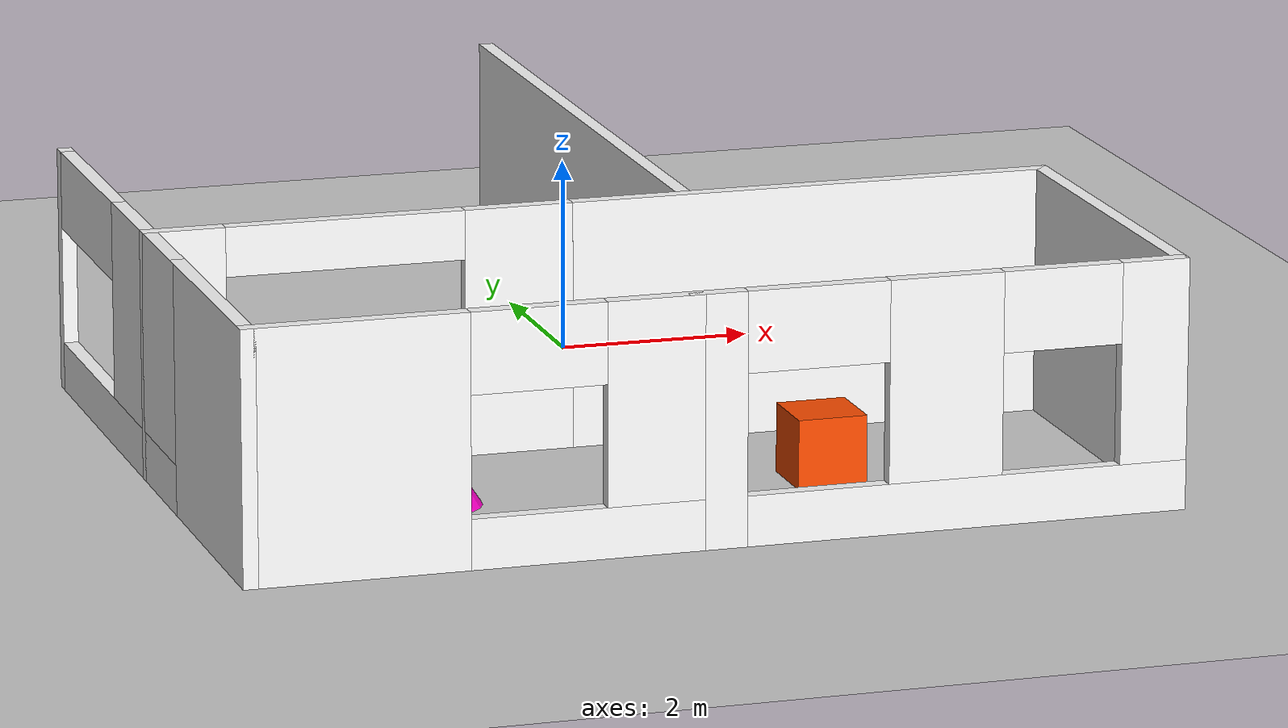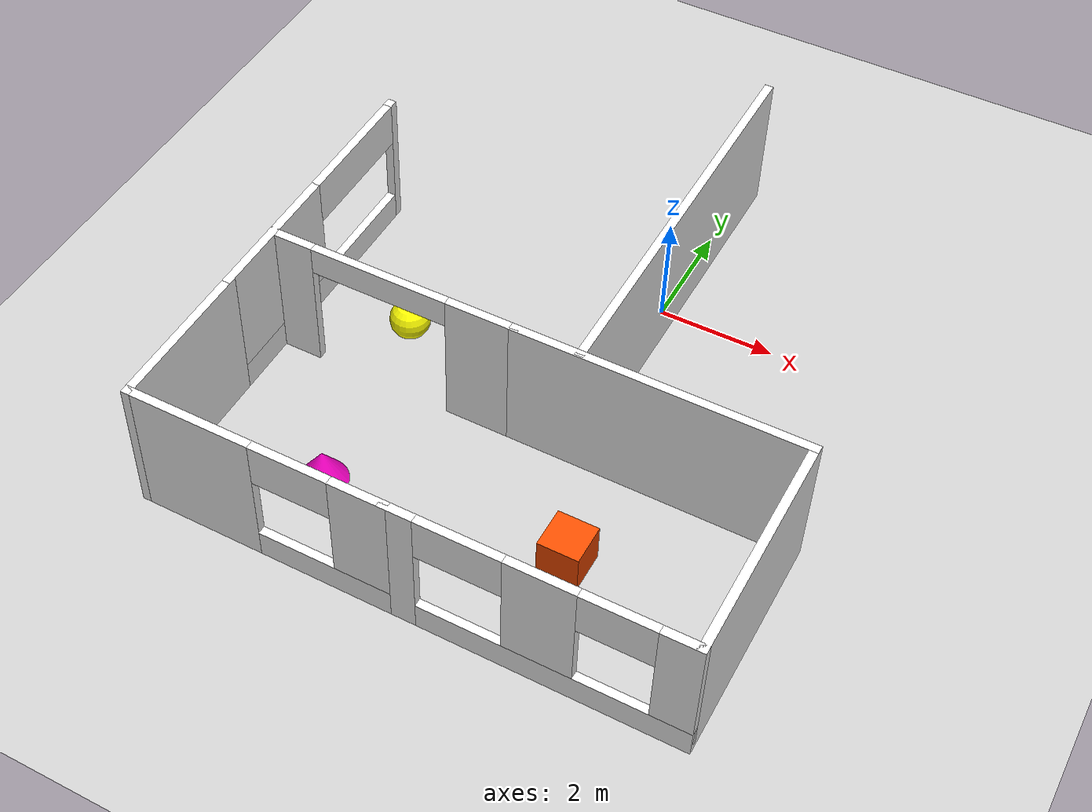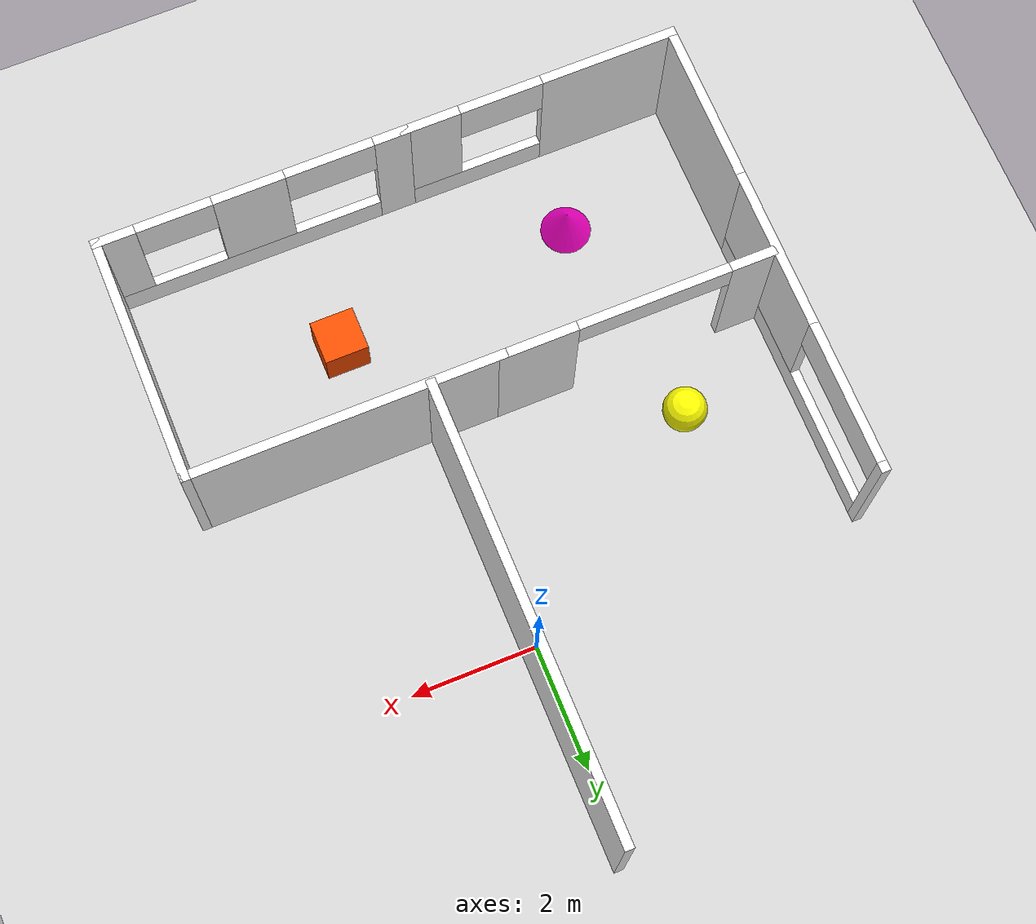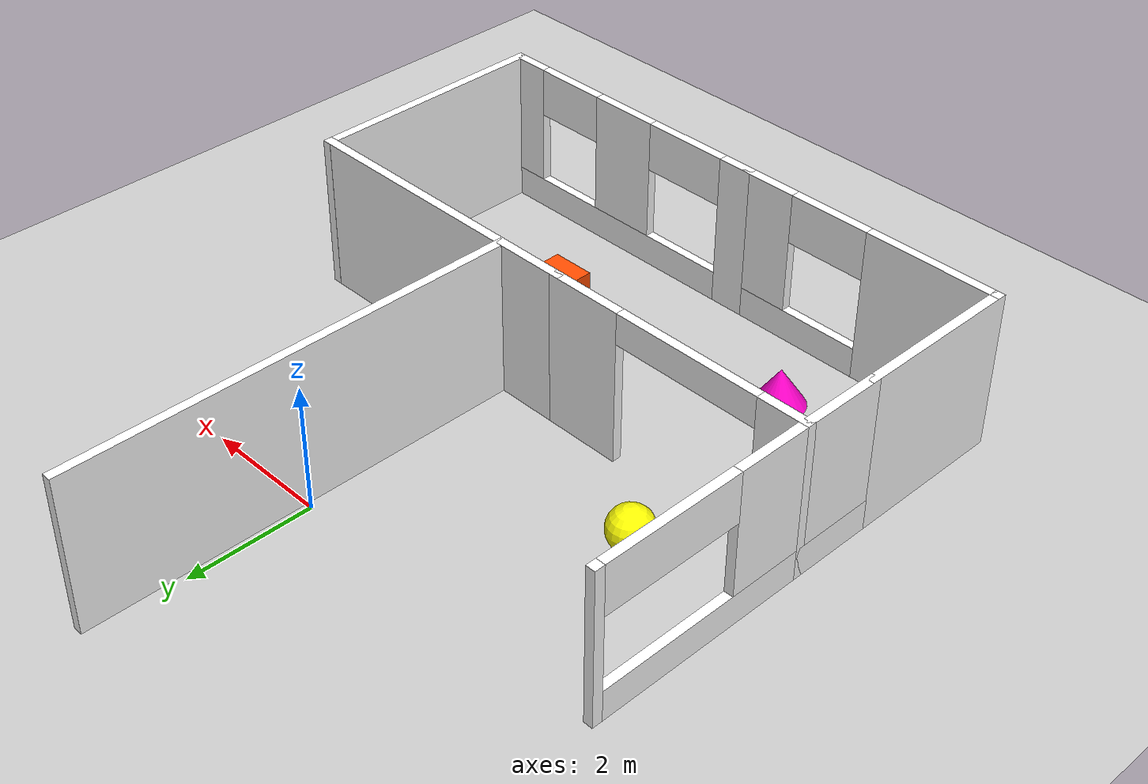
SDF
<sdf version="1.6">
 <world name="custom_world">
  <include><uri>https://fuel.gazebosim.org/1.0/OpenRobotics/models/Ground Plane</uri></include>
  <include><uri>https://fuel.gazebosim.org/1.0/OpenRobotics/models/Sun</uri></include>
  <model name="world_model">
   <pose>0 0 0 0 0 1.5708</pose>
   <link name="wall_3">
    <pose>-2.475 5.275 0 0 -0 3.14159</pose>
    <visual name="wall_3_visual_1">
     <pose>-2.41901 0 1.25 0 -0 0</pose>
     <geometry><box><size>0.161986 0.15 2.5</size></box></geometry>
     <material>
      <pbr><metal><albedo_map>textures/bricks.png</albedo_map></metal></pbr>
      <ambient>1 1 1 1</ambient>
      <diffuse>1 1 1 1</diffuse>
      <specular>0.2 0.2 0.2 1</specular>
      <emissive>0 0 0 1</emissive>
     </material>
    </visual>
    <visual name="wall_3_visual_2">
     <pose>0.080993 0 0.25 0 -0 0</pose>
     <geometry><box><size>4.83801 0.15 0.5</size></box></geometry>
     <material>
      <pbr><metal><albedo_map>textures/bricks.png</albedo_map></metal></pbr>
      <ambient>1 1 1 1</ambient>
      <diffuse>1 1 1 1</diffuse>
      <specular>0.2 0.2 0.2 1</specular>
      <emissive>0 0 0 1</emissive>
     </material>
    </visual>
    <visual name="wall_3_visual_3">
     <pose>1.2 0 1.5 0 -0 0</pose>
     <geometry><box><size>2.57501 0.15 2</size></box></geometry>
     <material>
      <pbr><metal><albedo_map>textures/bricks.png</albedo_map></metal></pbr>
      <ambient>1 1 1 1</ambient>
      <diffuse>1 1 1 1</diffuse>
      <specular>0.2 0.2 0.2 1</specular>
      <emissive>0 0 0 1</emissive>
     </material>
    </visual>
    <visual name="wall_3_visual_4">
     <pose>-1.20651 0 2.1 0 -0 0</pose>
     <geometry><box><size>2.263 0.15 0.8</size></box></geometry>
     <material>
      <pbr><metal><albedo_map>textures/bricks.png</albedo_map></metal></pbr>
      <ambient>1 1 1 1</ambient>
      <diffuse>1 1 1 1</diffuse>
      <specular>0.2 0.2 0.2 1</specular>
      <emissive>0 0 0 1</emissive>
     </material>
    </visual>
    <collision name="wall_3_collision_1">
     <pose>-2.41901 0 1.25 0 -0 0</pose>
     <geometry><box><size>0.161986 0.15 2.5</size></box></geometry>
     <surface>
      <friction>
       <ode><mu>1</mu><mu2>1</mu2><fdir1>0 0 0</fdir1><slip1>0</slip1><slip2>0</slip2></ode>
       <torsional>
        <coefficient>1</coefficient>
        <patch_radius>0</patch_radius>
        <surface_radius>0</surface_radius>
        <use_patch_radius>1</use_patch_radius>
        <ode><slip>0</slip></ode>
       </torsional>
      </friction>
      <bounce><restitution_coefficient>0</restitution_coefficient><threshold>1e+06</threshold></bounce>
      <contact>
       <collide_without_contact>0</collide_without_contact>
       <collide_without_contact_bitmask>1</collide_without_contact_bitmask>
       <collide_bitmask>1</collide_bitmask>
       <ode>
        <soft_cfm>0</soft_cfm>
        <soft_erp>0.2</soft_erp>
        <kp>1e+13</kp>
        <kd>1</kd>
        <max_vel>0.01</max_vel>
        <min_depth>0</min_depth>
       </ode>
       <bullet>
        <split_impulse>1</split_impulse>
        <split_impulse_penetration_threshold>-0.01</split_impulse_penetration_threshold>
        <soft_cfm>0</soft_cfm>
        <soft_erp>0.2</soft_erp>
        <kp>1e+13</kp>
        <kd>1</kd>
       </bullet>
      </contact>
     </surface>
    </collision>
    <collision name="wall_3_collision_2">
     <pose>0.080993 0 0.25 0 -0 0</pose>
     <geometry><box><size>4.83801 0.15 0.5</size></box></geometry>
     <surface>
      <friction>
       <ode><mu>1</mu><mu2>1</mu2><fdir1>0 0 0</fdir1><slip1>0</slip1><slip2>0</slip2></ode>
       <torsional>
        <coefficient>1</coefficient>
        <patch_radius>0</patch_radius>
        <surface_radius>0</surface_radius>
        <use_patch_radius>1</use_patch_radius>
        <ode><slip>0</slip></ode>
       </torsional>
      </friction>
      <bounce><restitution_coefficient>0</restitution_coefficient><threshold>1e+06</threshold></bounce>
      <contact>
       <collide_without_contact>0</collide_without_contact>
       <collide_without_contact_bitmask>1</collide_without_contact_bitmask>
       <collide_bitmask>1</collide_bitmask>
       <ode>
        <soft_cfm>0</soft_cfm>
        <soft_erp>0.2</soft_erp>
        <kp>1e+13</kp>
        <kd>1</kd>
        <max_vel>0.01</max_vel>
        <min_depth>0</min_depth>
       </ode>
       <bullet>
        <split_impulse>1</split_impulse>
        <split_impulse_penetration_threshold>-0.01</split_impulse_penetration_threshold>
        <soft_cfm>0</soft_cfm>
        <soft_erp>0.2</soft_erp>
        <kp>1e+13</kp>
        <kd>1</kd>
       </bullet>
      </contact>
     </surface>
    </collision>
    <collision name="wall_3_collision_3">
     <pose>1.2 0 1.5 0 -0 0</pose>
     <geometry><box><size>2.57501 0.15 2</size></box></geometry>
     <surface>
      <friction>
       <ode><mu>1</mu><mu2>1</mu2><fdir1>0 0 0</fdir1><slip1>0</slip1><slip2>0</slip2></ode>
       <torsional>
        <coefficient>1</coefficient>
        <patch_radius>0</patch_radius>
        <surface_radius>0</surface_radius>
        <use_patch_radius>1</use_patch_radius>
        <ode><slip>0</slip></ode>
       </torsional>
      </friction>
      <bounce><restitution_coefficient>0</restitution_coefficient><threshold>1e+06</threshold></bounce>
      <contact>
       <collide_without_contact>0</collide_without_contact>
       <collide_without_contact_bitmask>1</collide_without_contact_bitmask>
       <collide_bitmask>1</collide_bitmask>
       <ode>
        <soft_cfm>0</soft_cfm>
        <soft_erp>0.2</soft_erp>
        <kp>1e+13</kp>
        <kd>1</kd>
        <max_vel>0.01</max_vel>
        <min_depth>0</min_depth>
       </ode>
       <bullet>
        <split_impulse>1</split_impulse>
        <split_impulse_penetration_threshold>-0.01</split_impulse_penetration_threshold>
        <soft_cfm>0</soft_cfm>
        <soft_erp>0.2</soft_erp>
        <kp>1e+13</kp>
        <kd>1</kd>
       </bullet>
      </contact>
     </surface>
    </collision>
    <collision name="wall_3_collision_4">
     <pose>-1.20651 0 2.1 0 -0 0</pose>
     <geometry><box><size>2.263 0.15 0.8</size></box></geometry>
     <surface>
      <friction>
       <ode><mu>1</mu><mu2>1</mu2><fdir1>0 0 0</fdir1><slip1>0</slip1><slip2>0</slip2></ode>
       <torsional>
        <coefficient>1</coefficient>
        <patch_radius>0</patch_radius>
        <surface_radius>0</surface_radius>
        <use_patch_radius>1</use_patch_radius>
        <ode><slip>0</slip></ode>
       </torsional>
      </friction>
      <bounce><restitution_coefficient>0</restitution_coefficient><threshold>1e+06</threshold></bounce>
      <contact>
       <collide_without_contact>0</collide_without_contact>
       <collide_without_contact_bitmask>1</collide_without_contact_bitmask>
       <collide_bitmask>1</collide_bitmask>
       <ode>
        <soft_cfm>0</soft_cfm>
        <soft_erp>0.2</soft_erp>
        <kp>1e+13</kp>
        <kd>1</kd>
        <max_vel>0.01</max_vel>
        <min_depth>0</min_depth>
       </ode>
       <bullet>
        <split_impulse>1</split_impulse>
        <split_impulse_penetration_threshold>-0.01</split_impulse_penetration_threshold>
        <soft_cfm>0</soft_cfm>
        <soft_erp>0.2</soft_erp>
        <kp>1e+13</kp>
        <kd>1</kd>
       </bullet>
      </contact>
     </surface>
    </collision>
   </link>
   <link name="wall_4">
    <pose>-6.2 5.275 0 0 -0 3.14159</pose>
    <visual name="wall_4_visual">
     <pose>0 0 1.25 0 -0 0</pose>
     <geometry><box><size>2.75 0.15 2.5</size></box></geometry>
     <material>
      <pbr><metal><albedo_map>textures/bricks.png</albedo_map></metal></pbr>
      <ambient>1 1 1 1</ambient>
      <diffuse>1 1 1 1</diffuse>
      <specular>0.2 0.2 0.2 1</specular>
      <emissive>0 0 0 1</emissive>
     </material>
    </visual>
    <collision name="wall_4_collision">
     <pose>0 0 1.25 0 -0 0</pose>
     <geometry><box><size>2.75 0.15 2.5</size></box></geometry>
     <surface>
      <friction>
       <ode><mu>1</mu><mu2>1</mu2><fdir1>0 0 0</fdir1><slip1>0</slip1><slip2>0</slip2></ode>
       <torsional>
        <coefficient>1</coefficient>
        <patch_radius>0</patch_radius>
        <surface_radius>0</surface_radius>
        <use_patch_radius>1</use_patch_radius>
        <ode><slip>0</slip></ode>
       </torsional>
      </friction>
      <bounce><restitution_coefficient>0</restitution_coefficient><threshold>1e+06</threshold></bounce>
      <contact>
       <collide_without_contact>0</collide_without_contact>
       <collide_without_contact_bitmask>1</collide_without_contact_bitmask>
       <collide_bitmask>1</collide_bitmask>
       <ode>
        <soft_cfm>0</soft_cfm>
        <soft_erp>0.2</soft_erp>
        <kp>1e+13</kp>
        <kd>1</kd>
        <max_vel>0.01</max_vel>
        <min_depth>0</min_depth>
       </ode>
       <bullet>
        <split_impulse>1</split_impulse>
        <split_impulse_penetration_threshold>-0.01</split_impulse_penetration_threshold>
        <soft_cfm>0</soft_cfm>
        <soft_erp>0.2</soft_erp>
        <kp>1e+13</kp>
        <kd>1</kd>
       </bullet>
      </contact>
     </surface>
    </collision>
   </link>
   <link name="wall_5">
    <pose>-7.5 3.1 0 0 0 -1.5708</pose>
    <visual name="wall_5_visual_1">
     <pose>-1.14694 0 1.25 0 -0 0</pose>
     <geometry><box><size>2.20612 0.15 2.5</size></box></geometry>
     <material>
      <pbr><metal><albedo_map>textures/bricks.png</albedo_map></metal></pbr>
      <ambient>1 1 1 1</ambient>
      <diffuse>1 1 1 1</diffuse>
      <specular>0.2 0.2 0.2 1</specular>
      <emissive>0 0 0 1</emissive>
     </material>
    </visual>
    <visual name="wall_5_visual_2">
     <pose>1.10306 0 0.25 0 -0 0</pose>
     <geometry><box><size>2.29388 0.15 0.5</size></box></geometry>
     <material>
      <pbr><metal><albedo_map>textures/bricks.png</albedo_map></metal></pbr>
      <ambient>1 1 1 1</ambient>
      <diffuse>1 1 1 1</diffuse>
      <specular>0.2 0.2 0.2 1</specular>
      <emissive>0 0 0 1</emissive>
     </material>
    </visual>
    <visual name="wall_5_visual_3">
     <pose>1.76906 0 1.5 0 -0 0</pose>
     <geometry><box><size>0.96188 0.15 2</size></box></geometry>
     <material>
      <pbr><metal><albedo_map>textures/bricks.png</albedo_map></metal></pbr>
      <ambient>1 1 1 1</ambient>
      <diffuse>1 1 1 1</diffuse>
      <specular>0.2 0.2 0.2 1</specular>
      <emissive>0 0 0 1</emissive>
     </material>
    </visual>
    <visual name="wall_5_visual_4">
     <pose>0.62212 0 2.1 0 -0 0</pose>
     <geometry><box><size>1.332 0.15 0.8</size></box></geometry>
     <material>
      <pbr><metal><albedo_map>textures/bricks.png</albedo_map></metal></pbr>
      <ambient>1 1 1 1</ambient>
      <diffuse>1 1 1 1</diffuse>
      <specular>0.2 0.2 0.2 1</specular>
      <emissive>0 0 0 1</emissive>
     </material>
    </visual>
    <collision name="wall_5_collision_1">
     <pose>-1.14694 0 1.25 0 -0 0</pose>
     <geometry><box><size>2.20612 0.15 2.5</size></box></geometry>
     <surface>
      <friction>
       <ode><mu>1</mu><mu2>1</mu2><fdir1>0 0 0</fdir1><slip1>0</slip1><slip2>0</slip2></ode>
       <torsional>
        <coefficient>1</coefficient>
        <patch_radius>0</patch_radius>
        <surface_radius>0</surface_radius>
        <use_patch_radius>1</use_patch_radius>
        <ode><slip>0</slip></ode>
       </torsional>
      </friction>
      <bounce><restitution_coefficient>0</restitution_coefficient><threshold>1e+06</threshold></bounce>
      <contact>
       <collide_without_contact>0</collide_without_contact>
       <collide_without_contact_bitmask>1</collide_without_contact_bitmask>
       <collide_bitmask>1</collide_bitmask>
       <ode>
        <soft_cfm>0</soft_cfm>
        <soft_erp>0.2</soft_erp>
        <kp>1e+13</kp>
        <kd>1</kd>
        <max_vel>0.01</max_vel>
        <min_depth>0</min_depth>
       </ode>
       <bullet>
        <split_impulse>1</split_impulse>
        <split_impulse_penetration_threshold>-0.01</split_impulse_penetration_threshold>
        <soft_cfm>0</soft_cfm>
        <soft_erp>0.2</soft_erp>
        <kp>1e+13</kp>
        <kd>1</kd>
       </bullet>
      </contact>
     </surface>
    </collision>
    <collision name="wall_5_collision_2">
     <pose>1.10306 0 0.25 0 -0 0</pose>
     <geometry><box><size>2.29388 0.15 0.5</size></box></geometry>
     <surface>
      <friction>
       <ode><mu>1</mu><mu2>1</mu2><fdir1>0 0 0</fdir1><slip1>0</slip1><slip2>0</slip2></ode>
       <torsional>
        <coefficient>1</coefficient>
        <patch_radius>0</patch_radius>
        <surface_radius>0</surface_radius>
        <use_patch_radius>1</use_patch_radius>
        <ode><slip>0</slip></ode>
       </torsional>
      </friction>
      <bounce><restitution_coefficient>0</restitution_coefficient><threshold>1e+06</threshold></bounce>
      <contact>
       <collide_without_contact>0</collide_without_contact>
       <collide_without_contact_bitmask>1</collide_without_contact_bitmask>
       <collide_bitmask>1</collide_bitmask>
       <ode>
        <soft_cfm>0</soft_cfm>
        <soft_erp>0.2</soft_erp>
        <kp>1e+13</kp>
        <kd>1</kd>
        <max_vel>0.01</max_vel>
        <min_depth>0</min_depth>
       </ode>
       <bullet>
        <split_impulse>1</split_impulse>
        <split_impulse_penetration_threshold>-0.01</split_impulse_penetration_threshold>
        <soft_cfm>0</soft_cfm>
        <soft_erp>0.2</soft_erp>
        <kp>1e+13</kp>
        <kd>1</kd>
       </bullet>
      </contact>
     </surface>
    </collision>
    <collision name="wall_5_collision_3">
     <pose>1.76906 0 1.5 0 -0 0</pose>
     <geometry><box><size>0.96188 0.15 2</size></box></geometry>
     <surface>
      <friction>
       <ode><mu>1</mu><mu2>1</mu2><fdir1>0 0 0</fdir1><slip1>0</slip1><slip2>0</slip2></ode>
       <torsional>
        <coefficient>1</coefficient>
        <patch_radius>0</patch_radius>
        <surface_radius>0</surface_radius>
        <use_patch_radius>1</use_patch_radius>
        <ode><slip>0</slip></ode>
       </torsional>
      </friction>
      <bounce><restitution_coefficient>0</restitution_coefficient><threshold>1e+06</threshold></bounce>
      <contact>
       <collide_without_contact>0</collide_without_contact>
       <collide_without_contact_bitmask>1</collide_without_contact_bitmask>
       <collide_bitmask>1</collide_bitmask>
       <ode>
        <soft_cfm>0</soft_cfm>
        <soft_erp>0.2</soft_erp>
        <kp>1e+13</kp>
        <kd>1</kd>
        <max_vel>0.01</max_vel>
        <min_depth>0</min_depth>
       </ode>
       <bullet>
        <split_impulse>1</split_impulse>
        <split_impulse_penetration_threshold>-0.01</split_impulse_penetration_threshold>
        <soft_cfm>0</soft_cfm>
        <soft_erp>0.2</soft_erp>
        <kp>1e+13</kp>
        <kd>1</kd>
       </bullet>
      </contact>
     </surface>
    </collision>
    <collision name="wall_5_collision_4">
     <pose>0.62212 0 2.1 0 -0 0</pose>
     <geometry><box><size>1.332 0.15 0.8</size></box></geometry>
     <surface>
      <friction>
       <ode><mu>1</mu><mu2>1</mu2><fdir1>0 0 0</fdir1><slip1>0</slip1><slip2>0</slip2></ode>
       <torsional>
        <coefficient>1</coefficient>
        <patch_radius>0</patch_radius>
        <surface_radius>0</surface_radius>
        <use_patch_radius>1</use_patch_radius>
        <ode><slip>0</slip></ode>
       </torsional>
      </friction>
      <bounce><restitution_coefficient>0</restitution_coefficient><threshold>1e+06</threshold></bounce>
      <contact>
       <collide_without_contact>0</collide_without_contact>
       <collide_without_contact_bitmask>1</collide_without_contact_bitmask>
       <collide_bitmask>1</collide_bitmask>
       <ode>
        <soft_cfm>0</soft_cfm>
        <soft_erp>0.2</soft_erp>
        <kp>1e+13</kp>
        <kd>1</kd>
        <max_vel>0.01</max_vel>
        <min_depth>0</min_depth>
       </ode>
       <bullet>
        <split_impulse>1</split_impulse>
        <split_impulse_penetration_threshold>-0.01</split_impulse_penetration_threshold>
        <soft_cfm>0</soft_cfm>
        <soft_erp>0.2</soft_erp>
        <kp>1e+13</kp>
        <kd>1</kd>
       </bullet>
      </contact>
     </surface>
    </collision>
   </link>
   <link name="wall_6">
    <pose>-7.5 -1.5 0 0 0 -1.5708</pose>
    <visual name="wall_6_visual_1">
     <pose>-2.21538 0 1.25 0 -0 0</pose>
     <geometry><box><size>0.569241 0.15 2.5</size></box></geometry>
     <material>
      <pbr><metal><albedo_map>textures/bricks.png</albedo_map></metal></pbr>
      <ambient>1 1 1 1</ambient>
      <diffuse>1 1 1 1</diffuse>
      <specular>0.2 0.2 0.2 1</specular>
      <emissive>0 0 0 1</emissive>
     </material>
    </visual>
    <visual name="wall_6_visual_2">
     <pose>0.28462 0 0.25 0 -0 0</pose>
     <geometry><box><size>4.43076 0.15 0.5</size></box></geometry>
     <material>
      <pbr><metal><albedo_map>textures/bricks.png</albedo_map></metal></pbr>
      <ambient>1 1 1 1</ambient>
      <diffuse>1 1 1 1</diffuse>
      <specular>0.2 0.2 0.2 1</specular>
      <emissive>0 0 0 1</emissive>
     </material>
    </visual>
    <visual name="wall_6_visual_3">
     <pose>0.0521 0 1.5 0 -0 0</pose>
     <geometry><box><size>1.14172 0.15 2</size></box></geometry>
     <material>
      <pbr><metal><albedo_map>textures/bricks.png</albedo_map></metal></pbr>
      <ambient>1 1 1 1</ambient>
      <diffuse>1 1 1 1</diffuse>
      <specular>0.2 0.2 0.2 1</specular>
      <emissive>0 0 0 1</emissive>
     </material>
    </visual>
    <visual name="wall_6_visual_4">
     <pose>2.16098 0 1.5 0 -0 0</pose>
     <geometry><box><size>0.678041 0.15 2</size></box></geometry>
     <material>
      <pbr><metal><albedo_map>textures/bricks.png</albedo_map></metal></pbr>
      <ambient>1 1 1 1</ambient>
      <diffuse>1 1 1 1</diffuse>
      <specular>0.2 0.2 0.2 1</specular>
      <emissive>0 0 0 1</emissive>
     </material>
    </visual>
    <visual name="wall_6_visual_5">
     <pose>-1.22476 0 2.1 0 -0 0</pose>
     <geometry><box><size>1.412 0.15 0.8</size></box></geometry>
     <material>
      <pbr><metal><albedo_map>textures/bricks.png</albedo_map></metal></pbr>
      <ambient>1 1 1 1</ambient>
      <diffuse>1 1 1 1</diffuse>
      <specular>0.2 0.2 0.2 1</specular>
      <emissive>0 0 0 1</emissive>
     </material>
    </visual>
    <visual name="wall_6_visual_6">
     <pose>1.22246 0 2.1 0 -0 0</pose>
     <geometry><box><size>1.199 0.15 0.8</size></box></geometry>
     <material>
      <pbr><metal><albedo_map>textures/bricks.png</albedo_map></metal></pbr>
      <ambient>1 1 1 1</ambient>
      <diffuse>1 1 1 1</diffuse>
      <specular>0.2 0.2 0.2 1</specular>
      <emissive>0 0 0 1</emissive>
     </material>
    </visual>
    <collision name="wall_6_collision_1">
     <pose>-2.21538 0 1.25 0 -0 0</pose>
     <geometry><box><size>0.569241 0.15 2.5</size></box></geometry>
     <surface>
      <friction>
       <ode><mu>1</mu><mu2>1</mu2><fdir1>0 0 0</fdir1><slip1>0</slip1><slip2>0</slip2></ode>
       <torsional>
        <coefficient>1</coefficient>
        <patch_radius>0</patch_radius>
        <surface_radius>0</surface_radius>
        <use_patch_radius>1</use_patch_radius>
        <ode><slip>0</slip></ode>
       </torsional>
      </friction>
      <bounce><restitution_coefficient>0</restitution_coefficient><threshold>1e+06</threshold></bounce>
      <contact>
       <collide_without_contact>0</collide_without_contact>
       <collide_without_contact_bitmask>1</collide_without_contact_bitmask>
       <collide_bitmask>1</collide_bitmask>
       <ode>
        <soft_cfm>0</soft_cfm>
        <soft_erp>0.2</soft_erp>
        <kp>1e+13</kp>
        <kd>1</kd>
        <max_vel>0.01</max_vel>
        <min_depth>0</min_depth>
       </ode>
       <bullet>
        <split_impulse>1</split_impulse>
        <split_impulse_penetration_threshold>-0.01</split_impulse_penetration_threshold>
        <soft_cfm>0</soft_cfm>
        <soft_erp>0.2</soft_erp>
        <kp>1e+13</kp>
        <kd>1</kd>
       </bullet>
      </contact>
     </surface>
    </collision>
    <collision name="wall_6_collision_2">
     <pose>0.28462 0 0.25 0 -0 0</pose>
     <geometry><box><size>4.43076 0.15 0.5</size></box></geometry>
     <surface>
      <friction>
       <ode><mu>1</mu><mu2>1</mu2><fdir1>0 0 0</fdir1><slip1>0</slip1><slip2>0</slip2></ode>
       <torsional>
        <coefficient>1</coefficient>
        <patch_radius>0</patch_radius>
        <surface_radius>0</surface_radius>
        <use_patch_radius>1</use_patch_radius>
        <ode><slip>0</slip></ode>
       </torsional>
      </friction>
      <bounce><restitution_coefficient>0</restitution_coefficient><threshold>1e+06</threshold></bounce>
      <contact>
       <collide_without_contact>0</collide_without_contact>
       <collide_without_contact_bitmask>1</collide_without_contact_bitmask>
       <collide_bitmask>1</collide_bitmask>
       <ode>
        <soft_cfm>0</soft_cfm>
        <soft_erp>0.2</soft_erp>
        <kp>1e+13</kp>
        <kd>1</kd>
        <max_vel>0.01</max_vel>
        <min_depth>0</min_depth>
       </ode>
       <bullet>
        <split_impulse>1</split_impulse>
        <split_impulse_penetration_threshold>-0.01</split_impulse_penetration_threshold>
        <soft_cfm>0</soft_cfm>
        <soft_erp>0.2</soft_erp>
        <kp>1e+13</kp>
        <kd>1</kd>
       </bullet>
      </contact>
     </surface>
    </collision>
    <collision name="wall_6_collision_3">
     <pose>0.0521 0 1.5 0 -0 0</pose>
     <geometry><box><size>1.14172 0.15 2</size></box></geometry>
     <surface>
      <friction>
       <ode><mu>1</mu><mu2>1</mu2><fdir1>0 0 0</fdir1><slip1>0</slip1><slip2>0</slip2></ode>
       <torsional>
        <coefficient>1</coefficient>
        <patch_radius>0</patch_radius>
        <surface_radius>0</surface_radius>
        <use_patch_radius>1</use_patch_radius>
        <ode><slip>0</slip></ode>
       </torsional>
      </friction>
      <bounce><restitution_coefficient>0</restitution_coefficient><threshold>1e+06</threshold></bounce>
      <contact>
       <collide_without_contact>0</collide_without_contact>
       <collide_without_contact_bitmask>1</collide_without_contact_bitmask>
       <collide_bitmask>1</collide_bitmask>
       <ode>
        <soft_cfm>0</soft_cfm>
        <soft_erp>0.2</soft_erp>
        <kp>1e+13</kp>
        <kd>1</kd>
        <max_vel>0.01</max_vel>
        <min_depth>0</min_depth>
       </ode>
       <bullet>
        <split_impulse>1</split_impulse>
        <split_impulse_penetration_threshold>-0.01</split_impulse_penetration_threshold>
        <soft_cfm>0</soft_cfm>
        <soft_erp>0.2</soft_erp>
        <kp>1e+13</kp>
        <kd>1</kd>
       </bullet>
      </contact>
     </surface>
    </collision>
    <collision name="wall_6_collision_4">
     <pose>2.16098 0 1.5 0 -0 0</pose>
     <geometry><box><size>0.678041 0.15 2</size></box></geometry>
     <surface>
      <friction>
       <ode><mu>1</mu><mu2>1</mu2><fdir1>0 0 0</fdir1><slip1>0</slip1><slip2>0</slip2></ode>
       <torsional>
        <coefficient>1</coefficient>
        <patch_radius>0</patch_radius>
        <surface_radius>0</surface_radius>
        <use_patch_radius>1</use_patch_radius>
        <ode><slip>0</slip></ode>
       </torsional>
      </friction>
      <bounce><restitution_coefficient>0</restitution_coefficient><threshold>1e+06</threshold></bounce>
      <contact>
       <collide_without_contact>0</collide_without_contact>
       <collide_without_contact_bitmask>1</collide_without_contact_bitmask>
       <collide_bitmask>1</collide_bitmask>
       <ode>
        <soft_cfm>0</soft_cfm>
        <soft_erp>0.2</soft_erp>
        <kp>1e+13</kp>
        <kd>1</kd>
        <max_vel>0.01</max_vel>
        <min_depth>0</min_depth>
       </ode>
       <bullet>
        <split_impulse>1</split_impulse>
        <split_impulse_penetration_threshold>-0.01</split_impulse_penetration_threshold>
        <soft_cfm>0</soft_cfm>
        <soft_erp>0.2</soft_erp>
        <kp>1e+13</kp>
        <kd>1</kd>
       </bullet>
      </contact>
     </surface>
    </collision>
    <collision name="wall_6_collision_5">
     <pose>-1.22476 0 2.1 0 -0 0</pose>
     <geometry><box><size>1.412 0.15 0.8</size></box></geometry>
     <surface>
      <friction>
       <ode><mu>1</mu><mu2>1</mu2><fdir1>0 0 0</fdir1><slip1>0</slip1><slip2>0</slip2></ode>
       <torsional>
        <coefficient>1</coefficient>
        <patch_radius>0</patch_radius>
        <surface_radius>0</surface_radius>
        <use_patch_radius>1</use_patch_radius>
        <ode><slip>0</slip></ode>
       </torsional>
      </friction>
      <bounce><restitution_coefficient>0</restitution_coefficient><threshold>1e+06</threshold></bounce>
      <contact>
       <collide_without_contact>0</collide_without_contact>
       <collide_without_contact_bitmask>1</collide_without_contact_bitmask>
       <collide_bitmask>1</collide_bitmask>
       <ode>
        <soft_cfm>0</soft_cfm>
        <soft_erp>0.2</soft_erp>
        <kp>1e+13</kp>
        <kd>1</kd>
        <max_vel>0.01</max_vel>
        <min_depth>0</min_depth>
       </ode>
       <bullet>
        <split_impulse>1</split_impulse>
        <split_impulse_penetration_threshold>-0.01</split_impulse_penetration_threshold>
        <soft_cfm>0</soft_cfm>
        <soft_erp>0.2</soft_erp>
        <kp>1e+13</kp>
        <kd>1</kd>
       </bullet>
      </contact>
     </surface>
    </collision>
    <collision name="wall_6_collision_6">
     <pose>1.22246 0 2.1 0 -0 0</pose>
     <geometry><box><size>1.199 0.15 0.8</size></box></geometry>
     <surface>
      <friction>
       <ode><mu>1</mu><mu2>1</mu2><fdir1>0 0 0</fdir1><slip1>0</slip1><slip2>0</slip2></ode>
       <torsional>
        <coefficient>1</coefficient>
        <patch_radius>0</patch_radius>
        <surface_radius>0</surface_radius>
        <use_patch_radius>1</use_patch_radius>
        <ode><slip>0</slip></ode>
       </torsional>
      </friction>
      <bounce><restitution_coefficient>0</restitution_coefficient><threshold>1e+06</threshold></bounce>
      <contact>
       <collide_without_contact>0</collide_without_contact>
       <collide_without_contact_bitmask>1</collide_without_contact_bitmask>
       <collide_bitmask>1</collide_bitmask>
       <ode>
        <soft_cfm>0</soft_cfm>
        <soft_erp>0.2</soft_erp>
        <kp>1e+13</kp>
        <kd>1</kd>
        <max_vel>0.01</max_vel>
        <min_depth>0</min_depth>
       </ode>
       <bullet>
        <split_impulse>1</split_impulse>
        <split_impulse_penetration_threshold>-0.01</split_impulse_penetration_threshold>
        <soft_cfm>0</soft_cfm>
        <soft_erp>0.2</soft_erp>
        <kp>1e+13</kp>
        <kd>1</kd>
       </bullet>
      </contact>
     </surface>
    </collision>
   </link>
   <link name="wall_7">
    <pose>-5.575 -3.925 0 0 -0 0</pose>
    <visual name="wall_7_visual">
     <pose>0 0 1.25 0 -0 0</pose>
     <geometry><box><size>4 0.15 2.5</size></box></geometry>
     <material>
      <pbr><metal><albedo_map>textures/bricks.png</albedo_map></metal></pbr>
      <ambient>1 1 1 1</ambient>
      <diffuse>1 1 1 1</diffuse>
      <specular>0.2 0.2 0.2 1</specular>
      <emissive>0 0 0 1</emissive>
     </material>
    </visual>
    <collision name="wall_7_collision">
     <pose>0 0 1.25 0 -0 0</pose>
     <geometry><box><size>4 0.15 2.5</size></box></geometry>
     <surface>
      <friction>
       <ode><mu>1</mu><mu2>1</mu2><fdir1>0 0 0</fdir1><slip1>0</slip1><slip2>0</slip2></ode>
       <torsional>
        <coefficient>1</coefficient>
        <patch_radius>0</patch_radius>
        <surface_radius>0</surface_radius>
        <use_patch_radius>1</use_patch_radius>
        <ode><slip>0</slip></ode>
       </torsional>
      </friction>
      <bounce><restitution_coefficient>0</restitution_coefficient><threshold>1e+06</threshold></bounce>
      <contact>
       <collide_without_contact>0</collide_without_contact>
       <collide_without_contact_bitmask>1</collide_without_contact_bitmask>
       <collide_bitmask>1</collide_bitmask>
       <ode>
        <soft_cfm>0</soft_cfm>
        <soft_erp>0.2</soft_erp>
        <kp>1e+13</kp>
        <kd>1</kd>
        <max_vel>0.01</max_vel>
        <min_depth>0</min_depth>
       </ode>
       <bullet>
        <split_impulse>1</split_impulse>
        <split_impulse_penetration_threshold>-0.01</split_impulse_penetration_threshold>
        <soft_cfm>0</soft_cfm>
        <soft_erp>0.2</soft_erp>
        <kp>1e+13</kp>
        <kd>1</kd>
       </bullet>
      </contact>
     </surface>
    </collision>
   </link>
   <link name="wall_8">
    <pose>-3.65151 -1.49625 0 0 -0 1.5708</pose>
    <visual name="wall_8_visual">
     <pose>0 0 1.25 0 -0 0</pose>
     <geometry><box><size>5 0.15 2.5</size></box></geometry>
     <material>
      <pbr><metal><albedo_map>textures/bricks.png</albedo_map></metal></pbr>
      <ambient>1 1 1 1</ambient>
      <diffuse>1 1 1 1</diffuse>
      <specular>0.2 0.2 0.2 1</specular>
      <emissive>0 0 0 1</emissive>
     </material>
    </visual>
    <collision name="wall_8_collision">
     <pose>0 0 1.25 0 -0 0</pose>
     <geometry><box><size>5 0.15 2.5</size></box></geometry>
     <surface>
      <friction>
       <ode><mu>1</mu><mu2>1</mu2><fdir1>0 0 0</fdir1><slip1>0</slip1><slip2>0</slip2></ode>
       <torsional>
        <coefficient>1</coefficient>
        <patch_radius>0</patch_radius>
        <surface_radius>0</surface_radius>
        <use_patch_radius>1</use_patch_radius>
        <ode><slip>0</slip></ode>
       </torsional>
      </friction>
      <bounce><restitution_coefficient>0</restitution_coefficient><threshold>1e+06</threshold></bounce>
      <contact>
       <collide_without_contact>0</collide_without_contact>
       <collide_without_contact_bitmask>1</collide_without_contact_bitmask>
       <collide_bitmask>1</collide_bitmask>
       <ode>
        <soft_cfm>0</soft_cfm>
        <soft_erp>0.2</soft_erp>
        <kp>1e+13</kp>
        <kd>1</kd>
        <max_vel>0.01</max_vel>
        <min_depth>0</min_depth>
       </ode>
       <bullet>
        <split_impulse>1</split_impulse>
        <split_impulse_penetration_threshold>-0.01</split_impulse_penetration_threshold>
        <soft_cfm>0</soft_cfm>
        <soft_erp>0.2</soft_erp>
        <kp>1e+13</kp>
        <kd>1</kd>
       </bullet>
      </contact>
     </surface>
    </collision>
   </link>
   <link name="wall_10">
    <pose>-0.1 -0.17494 0 0 0 -4.6e-05</pose>
    <visual name="wall_10_visual">
     <pose>0 0 1.25 0 -0 0</pose>
     <geometry><box><size>7.2 0.15 2.5</size></box></geometry>
     <material>
      <pbr><metal><albedo_map>textures/bricks.png</albedo_map></metal></pbr>
      <ambient>1 1 1 1</ambient>
      <diffuse>1 1 1 1</diffuse>
      <specular>0.2 0.2 0.2 1</specular>
      <emissive>0 0 0 1</emissive>
     </material>
    </visual>
    <collision name="wall_10_collision">
     <pose>0 0 1.25 0 -0 0</pose>
     <geometry><box><size>7.2 0.15 2.5</size></box></geometry>
     <surface>
      <friction>
       <ode><mu>1</mu><mu2>1</mu2><fdir1>0 0 0</fdir1><slip1>0</slip1><slip2>0</slip2></ode>
       <torsional>
        <coefficient>1</coefficient>
        <patch_radius>0</patch_radius>
        <surface_radius>0</surface_radius>
        <use_patch_radius>1</use_patch_radius>
        <ode><slip>0</slip></ode>
       </torsional>
      </friction>
      <bounce><restitution_coefficient>0</restitution_coefficient><threshold>1e+06</threshold></bounce>
      <contact>
       <collide_without_contact>0</collide_without_contact>
       <collide_without_contact_bitmask>1</collide_without_contact_bitmask>
       <collide_bitmask>1</collide_bitmask>
       <ode>
        <soft_cfm>0</soft_cfm>
        <soft_erp>0.2</soft_erp>
        <kp>1e+13</kp>
        <kd>1</kd>
        <max_vel>0.01</max_vel>
        <min_depth>0</min_depth>
       </ode>
       <bullet>
        <split_impulse>1</split_impulse>
        <split_impulse_penetration_threshold>-0.01</split_impulse_penetration_threshold>
        <soft_cfm>0</soft_cfm>
        <soft_erp>0.2</soft_erp>
        <kp>1e+13</kp>
        <kd>1</kd>
       </bullet>
      </contact>
     </surface>
    </collision>
   </link>
   <link name="wall_16">
    <pose>-3.65151 3.1 0 0 -0 1.5708</pose>
    <visual name="wall_16_visual_1">
     <pose>-1.62116 0 1.25 0 -0 0</pose>
     <geometry><box><size>1.25768 0.15 2.5</size></box></geometry>
     <material>
      <pbr><metal><albedo_map>textures/bricks.png</albedo_map></metal></pbr>
      <ambient>1 1 1 1</ambient>
      <diffuse>1 1 1 1</diffuse>
      <specular>0.2 0.2 0.2 1</specular>
      <emissive>0 0 0 1</emissive>
     </material>
    </visual>
    <visual name="wall_16_visual_2">
     <pose>1.83695 0 1.25 0 -0 0</pose>
     <geometry><box><size>0.826108 0.15 2.5</size></box></geometry>
     <material>
      <pbr><metal><albedo_map>textures/bricks.png</albedo_map></metal></pbr>
      <ambient>1 1 1 1</ambient>
      <diffuse>1 1 1 1</diffuse>
      <specular>0.2 0.2 0.2 1</specular>
      <emissive>0 0 0 1</emissive>
     </material>
    </visual>
    <visual name="wall_16_visual_3">
     <pose>0.215786 0 2.25 0 -0 0</pose>
     <geometry><box><size>2.41621 0.15 0.5</size></box></geometry>
     <material>
      <pbr><metal><albedo_map>textures/bricks.png</albedo_map></metal></pbr>
      <ambient>1 1 1 1</ambient>
      <diffuse>1 1 1 1</diffuse>
      <specular>0.2 0.2 0.2 1</specular>
      <emissive>0 0 0 1</emissive>
     </material>
    </visual>
    <collision name="wall_16_collision_1">
     <pose>-1.62116 0 1.25 0 -0 0</pose>
     <geometry><box><size>1.25768 0.15 2.5</size></box></geometry>
     <surface>
      <friction>
       <ode><mu>1</mu><mu2>1</mu2><fdir1>0 0 0</fdir1><slip1>0</slip1><slip2>0</slip2></ode>
       <torsional>
        <coefficient>1</coefficient>
        <patch_radius>0</patch_radius>
        <surface_radius>0</surface_radius>
        <use_patch_radius>1</use_patch_radius>
        <ode><slip>0</slip></ode>
       </torsional>
      </friction>
      <bounce><restitution_coefficient>0</restitution_coefficient><threshold>1e+06</threshold></bounce>
      <contact>
       <collide_without_contact>0</collide_without_contact>
       <collide_without_contact_bitmask>1</collide_without_contact_bitmask>
       <collide_bitmask>1</collide_bitmask>
       <ode>
        <soft_cfm>0</soft_cfm>
        <soft_erp>0.2</soft_erp>
        <kp>1e+13</kp>
        <kd>1</kd>
        <max_vel>0.01</max_vel>
        <min_depth>0</min_depth>
       </ode>
       <bullet>
        <split_impulse>1</split_impulse>
        <split_impulse_penetration_threshold>-0.01</split_impulse_penetration_threshold>
        <soft_cfm>0</soft_cfm>
        <soft_erp>0.2</soft_erp>
        <kp>1e+13</kp>
        <kd>1</kd>
       </bullet>
      </contact>
     </surface>
    </collision>
    <collision name="wall_16_collision_2">
     <pose>1.83695 0 1.25 0 -0 0</pose>
     <geometry><box><size>0.826108 0.15 2.5</size></box></geometry>
     <surface>
      <friction>
       <ode><mu>1</mu><mu2>1</mu2><fdir1>0 0 0</fdir1><slip1>0</slip1><slip2>0</slip2></ode>
       <torsional>
        <coefficient>1</coefficient>
        <patch_radius>0</patch_radius>
        <surface_radius>0</surface_radius>
        <use_patch_radius>1</use_patch_radius>
        <ode><slip>0</slip></ode>
       </torsional>
      </friction>
      <bounce><restitution_coefficient>0</restitution_coefficient><threshold>1e+06</threshold></bounce>
      <contact>
       <collide_without_contact>0</collide_without_contact>
       <collide_without_contact_bitmask>1</collide_without_contact_bitmask>
       <collide_bitmask>1</collide_bitmask>
       <ode>
        <soft_cfm>0</soft_cfm>
        <soft_erp>0.2</soft_erp>
        <kp>1e+13</kp>
        <kd>1</kd>
        <max_vel>0.01</max_vel>
        <min_depth>0</min_depth>
       </ode>
       <bullet>
        <split_impulse>1</split_impulse>
        <split_impulse_penetration_threshold>-0.01</split_impulse_penetration_threshold>
        <soft_cfm>0</soft_cfm>
        <soft_erp>0.2</soft_erp>
        <kp>1e+13</kp>
        <kd>1</kd>
       </bullet>
      </contact>
     </surface>
    </collision>
    <collision name="wall_16_collision_3">
     <pose>0.215786 0 2.25 0 -0 0</pose>
     <geometry><box><size>2.41621 0.15 0.5</size></box></geometry>
     <surface>
      <friction>
       <ode><mu>1</mu><mu2>1</mu2><fdir1>0 0 0</fdir1><slip1>0</slip1><slip2>0</slip2></ode>
       <torsional>
        <coefficient>1</coefficient>
        <patch_radius>0</patch_radius>
        <surface_radius>0</surface_radius>
        <use_patch_radius>1</use_patch_radius>
        <ode><slip>0</slip></ode>
       </torsional>
      </friction>
      <bounce><restitution_coefficient>0</restitution_coefficient><threshold>1e+06</threshold></bounce>
      <contact>
       <collide_without_contact>0</collide_without_contact>
       <collide_without_contact_bitmask>1</collide_without_contact_bitmask>
       <collide_bitmask>1</collide_bitmask>
       <ode>
        <soft_cfm>0</soft_cfm>
        <soft_erp>0.2</soft_erp>
        <kp>1e+13</kp>
        <kd>1</kd>
        <max_vel>0.01</max_vel>
        <min_depth>0</min_depth>
       </ode>
       <bullet>
        <split_impulse>1</split_impulse>
        <split_impulse_penetration_threshold>-0.01</split_impulse_penetration_threshold>
        <soft_cfm>0</soft_cfm>
        <soft_erp>0.2</soft_erp>
        <kp>1e+13</kp>
        <kd>1</kd>
       </bullet>
      </contact>
     </surface>
    </collision>
   </link>
   <model name="box2">
    <pose>-5.5 -1 0.35 0 0 0</pose>
    <link name="box_link">
     <inertial>
      <inertia><ixx>0.16666</ixx><ixy>0</ixy><ixz>0</ixz><iyy>0.16666</iyy><iyz>0</iyz><izz>0.16666</izz></inertia>
      <mass>1</mass>
     </inertial>
     <collision name="box_collision"><geometry><box><size>0.7 0.7 0.7</size></box></geometry></collision>
     <visual name="box_visual">
      <geometry><box><size>0.7 0.7 0.7</size></box></geometry>
      <material>
       <ambient>0.4 0.1 0 1</ambient>
       <diffuse>1 0.3 0 1</diffuse>
       <specular>1 0.5 0.2 1</specular>
      </material>
     </visual>
    </link>
    <static>false</static>
   </model>
   <model name="sphere1">
    <pose>-2.5 3.5 0.35 0 0 0</pose>
    <link name="sphere_link">
     <inertial>
      <inertia>
       <ixx>0.10000000000000001</ixx>
       <ixy>0</ixy>
       <ixz>0</ixz>
       <iyy>0.10000000000000001</iyy>
       <iyz>0</iyz>
       <izz>0.10000000000000001</izz>
      </inertia>
      <mass>1</mass>
     </inertial>
     <collision name="sphere_collision"><geometry><sphere><radius>0.35</radius></sphere></geometry></collision>
     <visual name="sphere_visual">
      <geometry><sphere><radius>0.35</radius></sphere></geometry>
      <material><ambient>0.5 0.5 0 1</ambient><diffuse>1 1 0 1</diffuse><specular>1 1 0.5 1</specular></material>
     </visual>
    </link>
    <static>false</static>
   </model>
   <model name="cone3">
    <pose>-6 3 0.5 0 0 0</pose>
    <link name="cone_link">
     <inertial>
      <inertia>
       <ixx>0.14580000000000001</ixx>
       <ixy>0</ixy>
       <ixz>0</ixz>
       <iyy>0.14580000000000001</iyy>
       <iyz>0</iyz>
       <izz>0.125</izz>
      </inertia>
      <mass>1</mass>
     </inertial>
     <collision name="cone_collision">
      <geometry><cone><radius>0.4</radius><length>0.6</length></cone></geometry>
     </collision>
     <visual name="cone_visual">
      <geometry><cone><radius>0.4</radius><length>0.6</length></cone></geometry>
      <material><ambient>0.4 0 0.3 1</ambient><diffuse>1 0 0.8 1</diffuse><specular>1 0.5 1 1</specular></material>
     </visual>
    </link>
    <static>false</static>
   </model>
  </model>
 </world>
</sdf>
